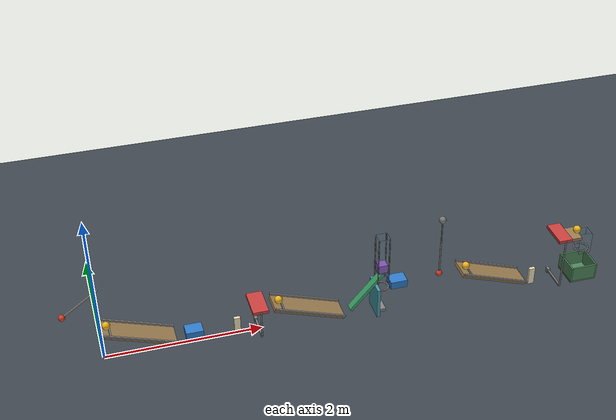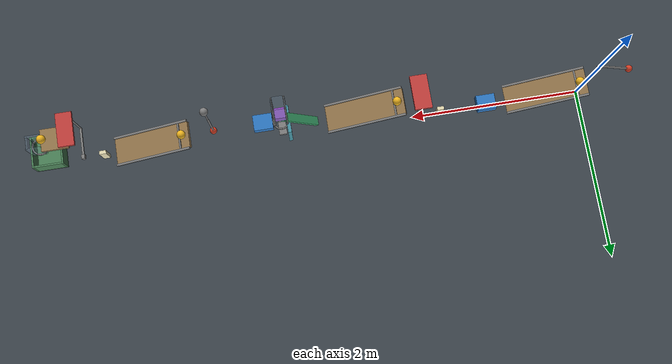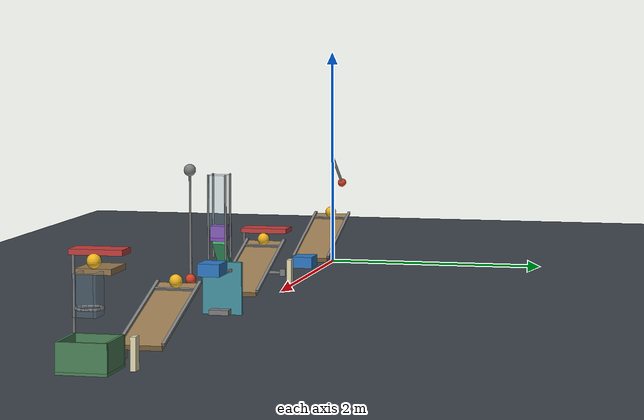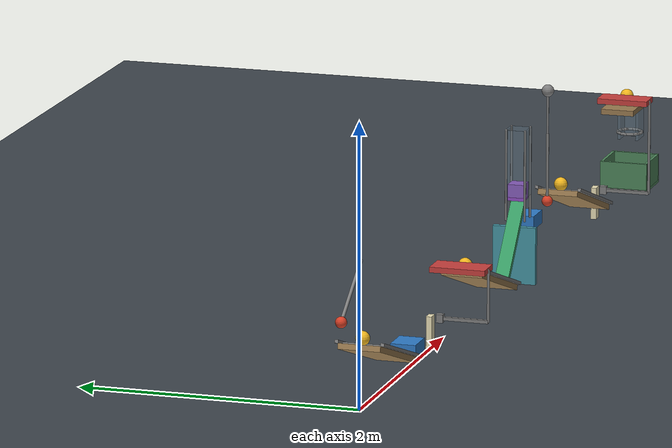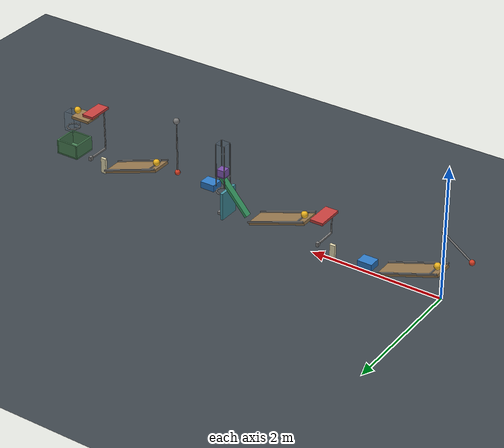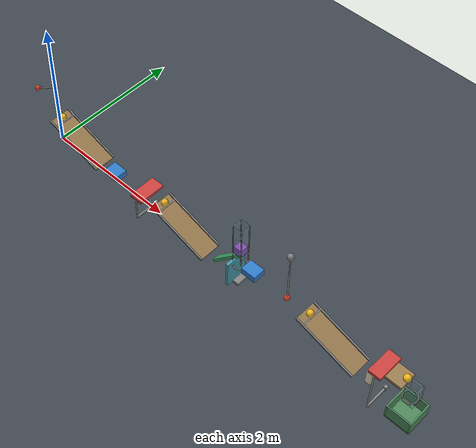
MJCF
<mujoco model="passive_chain_reaction">
  <compiler angle="degree" autolimits="true" inertiafromgeom="true"/>
  <option timestep="0.002" gravity="0 0 -9.81" integrator="implicitfast" solver="Newton" iterations="100" cone="elliptic"/>
  <size njmax="4000" nconmax="1000"/>

  <worldbody>
    <light name="main_light" pos="3 -3 7" dir="0 0 -1" directional="true"/>
    <camera name="overview" pos="3.2 -7.5 4" xyaxes="1 0 0 0 0.38 0.925"/>
    <geom name="floor" type="plane" pos="0 0 0" size="12 5 0.1" friction="0.68 0.005 0.0001" solref="0.008 0.6901" rgba="0.24 0.27 0.30 1"/>

    <body name="pendulum1" pos="0.040896 0 1.034316" euler="0 55 0">
      <joint name="pendulum1_hinge" type="hinge" axis="0 -1 0" range="0 110" damping="0.04" solreflimit="0.004 1"/>
      <geom name="pendulum1_rod" type="capsule" fromto="0 0 0 0 0 -0.50" size="0.012" mass="0.06" friction="0.68 0.005 0.0001" solref="0.008 0.6901"/>
      <geom name="pendulum1_bob" type="sphere" pos="0 0 -0.55" size="0.04" mass="0.34" friction="0.68 0.005 0.0001" solref="0.008 0.6901" rgba="0.85 0.25 0.15 1"/>
    </body>

    <body name="ramp1" pos="0.442610 0 0.285735" euler="0 19 0">
      <geom name="ramp1_surface" type="box" size="0.475 0.15 0.02" friction="0.68 0.005 0.0001" solref="0.008 0.6901" rgba="0.60 0.48 0.31 1"/>
      <geom name="ramp1_left_rail" type="box" pos="0 0.162 0.031" size="0.475 0.012 0.011" friction="0.68 0.005 0.0001" solref="0.008 0.6901"/>
      <geom name="ramp1_right_rail" type="box" pos="0 -0.162 0.031" size="0.475 0.012 0.011" friction="0.68 0.005 0.0001" solref="0.008 0.6901"/>
      <geom name="ramp1_retainer" type="box" pos="-0.36 0 0.028" size="0.01 0.15 0.008" friction="0.68 0.005 0.0001" solref="0.008 0.6901"/>
    </body>

    <body name="ball1" pos="0.080896 0 0.484316">
      <freejoint name="ball1_free"/>
      <geom name="ball1_sphere" type="sphere" size="0.05" mass="0.20" friction="0.68 0.005 0.0001" solref="0.008 0.6901" rgba="0.95 0.72 0.12 1"/>
    </body>

    <body name="cart1" pos="1.128243 0 0.15">
      <joint name="cart1_slide" type="slide" axis="1 0 0" range="0 0.48" damping="0.20" solreflimit="0.004 1"/>
      <geom name="cart1_chassis" type="box" size="0.11 0.09 0.05" mass="0.50" friction="0.68 0.005 0.0001" solref="0.008 0.6901" rgba="0.18 0.48 0.78 1"/>
    </body>

    <body name="domino1" pos="1.678243 0 0.12">
      <freejoint name="domino1_free"/>
      <geom name="domino1_tile" type="box" size="0.04 0.02 0.12" mass="0.25" friction="0.68 0.005 0.0001" solref="0.008 0.6901" rgba="0.92 0.88 0.72 1"/>
    </body>

    <!-- Raised flap panels are connected to low domino trigger arms.
         Their hinge axes are tilted 10 degrees from vertical. -->
    <body name="flap1" pos="1.918243 -0.35 0.53">
      <joint name="flap1_hinge" type="hinge" axis="0 0.173648 -0.984808" range="0 65" damping="0.04" solreflimit="0.004 1"/>
      <geom name="flap1_panel" type="box" pos="0 0.20 0" size="0.10 0.20 0.02" mass="0.27" friction="0.68 0.005 0.0001" solref="0.008 0.6901" rgba="0.78 0.25 0.24 1"/>
      <geom name="flap1_trigger_arm" type="box" pos="0 0.175 -0.37" size="0.012 0.175 0.012" mass="0.015" friction="0.68 0.005 0.0001" solref="0.008 0.6901"/>
      <geom name="flap1_spindle" type="capsule" fromto="0 0 -0.37 0 0 0" size="0.01" mass="0.015" friction="0.68 0.005 0.0001" solref="0.008 0.6901"/>
      <geom name="flap1_trigger_paddle" type="box" pos="0 0.35 -0.37" size="0.02 0.025 0.03" density="0" friction="0.68 0.005 0.0001" solref="0.008 0.6901"/>
    </body>

    <body name="ramp2" pos="2.559957 -0.10 0.285735" euler="0 19 0">
      <geom name="ramp2_surface" type="box" size="0.475 0.15 0.02" friction="0.68 0.005 0.0001" solref="0.008 0.6901" rgba="0.60 0.48 0.31 1"/>
      <geom name="ramp2_left_rail" type="box" pos="0 0.162 0.031" size="0.475 0.012 0.011" friction="0.68 0.005 0.0001" solref="0.008 0.6901"/>
      <geom name="ramp2_right_rail" type="box" pos="0 -0.162 0.031" size="0.475 0.012 0.011" friction="0.68 0.005 0.0001" solref="0.008 0.6901"/>
      <geom name="ramp2_retainer" type="box" pos="-0.36 0 0.028" size="0.01 0.15 0.008" friction="0.68 0.005 0.0001" solref="0.008 0.6901"/>
    </body>

    <body name="ball2" pos="2.198243 -0.10 0.484316">
      <freejoint name="ball2_free"/>
      <geom name="ball2_sphere" type="sphere" size="0.05" mass="0.20" friction="0.68 0.005 0.0001" solref="0.008 0.6901" rgba="0.95 0.72 0.12 1"/>
    </body>

    <!-- Block loading opposes the preloaded seesaw spring at its lower stop. -->
    <body name="seesaw1" pos="3.343903 -0.10 0.381598" euler="0 -49 0">
      <joint name="seesaw1_hinge" type="hinge" axis="0 -1 0" range="0 40" damping="0.04" stiffness="0.50" springref="40" solreflimit="0.004 1"/>
      <geom name="seesaw1_beam" type="box" size="0.325 0.05 0.02" mass="0.55" friction="0.68 0.005 0.0001" solref="0.008 0.6901" rgba="0.22 0.62 0.40 1"/>
    </body>

    <body name="block1" pos="3.542028 -0.10 0.70">
      <freejoint name="block1_free"/>
      <geom name="block1_cube" type="box" size="0.06 0.06 0.06" mass="0.35" friction="0.68 0.005 0.0001" solref="0.008 0.6901" rgba="0.56 0.30 0.76 1"/>
    </body>

    <body name="block1_guide" pos="3.542028 -0.10 0">
      <geom name="block1_guide_left" type="box" pos="-0.074 0 0.915" size="0.006 0.061 0.245" friction="0.68 0.005 0.0001" solref="0.008 0.6901" rgba="0.5 0.65 0.75 0.25"/>
      <geom name="block1_guide_right" type="box" pos="0.074 0 0.915" size="0.006 0.061 0.245" friction="0.68 0.005 0.0001" solref="0.008 0.6901" rgba="0.5 0.65 0.75 0.25"/>
      <geom name="block1_guide_front" type="box" pos="0 -0.074 0.915" size="0.061 0.006 0.245" friction="0.68 0.005 0.0001" solref="0.008 0.6901" rgba="0.5 0.65 0.75 0.25"/>
      <geom name="block1_guide_back" type="box" pos="0 0.074 0.915" size="0.061 0.006 0.245" friction="0.68 0.005 0.0001" solref="0.008 0.6901" rgba="0.5 0.65 0.75 0.25"/>
      <geom name="block1_guide_post1" type="capsule" fromto="-0.07 -0.07 0.50 -0.07 -0.07 1.16" size="0.008" friction="0.68 0.005 0.0001" solref="0.008 0.6901"/>
      <geom name="block1_guide_post2" type="capsule" fromto="-0.07 0.07 0.50 -0.07 0.07 1.16" size="0.008" friction="0.68 0.005 0.0001" solref="0.008 0.6901"/>
      <geom name="block1_guide_post3" type="capsule" fromto="0.07 -0.07 0.50 0.07 -0.07 1.16" size="0.008" friction="0.68 0.005 0.0001" solref="0.008 0.6901"/>
      <geom name="block1_guide_post4" type="capsule" fromto="0.07 0.07 0.50 0.07 0.07 1.16" size="0.008" friction="0.68 0.005 0.0001" solref="0.008 0.6901"/>
    </body>

    <!-- Capsule polygons have a minimum clear diameter of 0.16 m. -->
    <body name="ring1" pos="3.542028 -0.10 0.40">
      <geom name="ring1_s01" type="capsule" fromto="0.093175 0 0 0.080693 0.046587 0" size="0.01" priority="1" friction="0.68 0.005 0.0001" solref="0.08 0.6901" solimp="0.7 0.9 0.02"/>
      <geom name="ring1_s02" type="capsule" fromto="0.080693 0.046587 0 0.046587 0.080693 0" size="0.01" priority="1" friction="0.68 0.005 0.0001" solref="0.08 0.6901" solimp="0.7 0.9 0.02"/>
      <geom name="ring1_s03" type="capsule" fromto="0.046587 0.080693 0 0 0.093175 0" size="0.01" priority="1" friction="0.68 0.005 0.0001" solref="0.08 0.6901" solimp="0.7 0.9 0.02"/>
      <geom name="ring1_s04" type="capsule" fromto="0 0.093175 0 -0.046587 0.080693 0" size="0.01" priority="1" friction="0.68 0.005 0.0001" solref="0.08 0.6901" solimp="0.7 0.9 0.02"/>
      <geom name="ring1_s05" type="capsule" fromto="-0.046587 0.080693 0 -0.080693 0.046587 0" size="0.01" priority="1" friction="0.68 0.005 0.0001" solref="0.08 0.6901" solimp="0.7 0.9 0.02"/>
      <geom name="ring1_s06" type="capsule" fromto="-0.080693 0.046587 0 -0.093175 0 0" size="0.01" priority="1" friction="0.68 0.005 0.0001" solref="0.08 0.6901" solimp="0.7 0.9 0.02"/>
      <geom name="ring1_s07" type="capsule" fromto="-0.093175 0 0 -0.080693 -0.046587 0" size="0.01" priority="1" friction="0.68 0.005 0.0001" solref="0.08 0.6901" solimp="0.7 0.9 0.02"/>
      <geom name="ring1_s08" type="capsule" fromto="-0.080693 -0.046587 0 -0.046587 -0.080693 0" size="0.01" priority="1" friction="0.68 0.005 0.0001" solref="0.08 0.6901" solimp="0.7 0.9 0.02"/>
      <geom name="ring1_s09" type="capsule" fromto="-0.046587 -0.080693 0 0 -0.093175 0" size="0.01" priority="1" friction="0.68 0.005 0.0001" solref="0.08 0.6901" solimp="0.7 0.9 0.02"/>
      <geom name="ring1_s10" type="capsule" fromto="0 -0.093175 0 0.046587 -0.080693 0" size="0.01" priority="1" friction="0.68 0.005 0.0001" solref="0.08 0.6901" solimp="0.7 0.9 0.02"/>
      <geom name="ring1_s11" type="capsule" fromto="0.046587 -0.080693 0 0.080693 -0.046587 0" size="0.01" priority="1" friction="0.68 0.005 0.0001" solref="0.08 0.6901" solimp="0.7 0.9 0.02"/>
      <geom name="ring1_s12" type="capsule" fromto="0.080693 -0.046587 0 0.093175 0 0" size="0.01" priority="1" friction="0.68 0.005 0.0001" solref="0.08 0.6901" solimp="0.7 0.9 0.02"/>
    </body>

    <body name="door1" pos="3.461028 -0.10 0.04">
      <joint name="door1_hinge" type="hinge" axis="0 1 0" range="0 70" damping="0.04" solreflimit="0.004 1"/>
      <geom name="door1_panel" type="box" pos="0 0 0.21" size="0.02 0.16 0.21" mass="0.45" friction="0.68 0.005 0.0001" solref="0.008 0.6901" rgba="0.27 0.59 0.65 1"/>
      <geom name="door1_trigger_foot" type="box" pos="0.081 0 0.03" size="0.045 0.08 0.02" density="0" friction="0.68 0.005 0.0001" solref="0.008 0.6901"/>
    </body>

    <body name="cart2" pos="3.751028 -0.10 0.444005">
      <joint name="cart2_slide" type="slide" axis="1 0 0" range="0 0.49" damping="0.20" solreflimit="0.004 1"/>
      <geom name="cart2_chassis" type="box" size="0.11 0.09 0.05" mass="0.50" friction="0.68 0.005 0.0001" solref="0.008 0.6901" rgba="0.18 0.48 0.78 1"/>
    </body>

    <!-- Hinge-to-bob length is 0.50 m; total assembly mass is 0.35 kg. -->
    <body name="pendulum2" pos="4.321028 -0.10 0.944005">
      <joint name="pendulum2_hinge" type="hinge" axis="0 -1 0" range="0 38" damping="0.04" solreflimit="0.004 1"/>
      <geom name="pendulum2_rod" type="capsule" fromto="0 0 0 0 0 -0.50" size="0.01" mass="0.02" friction="0.68 0.005 0.0001" solref="0.008 0.6901"/>
      <geom name="pendulum2_bob" type="sphere" pos="0 0 -0.50" size="0.04" mass="0.13" friction="0.68 0.005 0.0001" solref="0.008 0.6901" rgba="0.85 0.25 0.15 1"/>
      <geom name="pendulum2_counterweight_stem" type="capsule" fromto="0 0 0 0 0 0.325" size="0.008" density="0" friction="0.68 0.005 0.0001" solref="0.008 0.6901"/>
      <geom name="pendulum2_counterweight" type="sphere" pos="0 0 0.325" size="0.045" mass="0.20" friction="0.68 0.005 0.0001" solref="0.008 0.6901"/>
    </body>

    <body name="ramp3" pos="5.050573 -0.10 0.285735" euler="0 19 0">
      <geom name="ramp3_surface" type="box" size="0.475 0.15 0.02" friction="0.68 0.005 0.0001" solref="0.008 0.6901" rgba="0.60 0.48 0.31 1"/>
      <geom name="ramp3_left_rail" type="box" pos="0 0.162 0.031" size="0.475 0.012 0.011" friction="0.68 0.005 0.0001" solref="0.008 0.6901"/>
      <geom name="ramp3_right_rail" type="box" pos="0 -0.162 0.031" size="0.475 0.012 0.011" friction="0.68 0.005 0.0001" solref="0.008 0.6901"/>
      <geom name="ramp3_retainer" type="box" pos="-0.36 0 0.028" size="0.01 0.15 0.008" friction="0.68 0.005 0.0001" solref="0.008 0.6901"/>
    </body>

    <body name="ball3" pos="4.688859 -0.10 0.484316">
      <freejoint name="ball3_free"/>
      <geom name="ball3_sphere" type="sphere" size="0.05" mass="0.20" friction="0.68 0.005 0.0001" solref="0.008 0.6901" rgba="0.95 0.72 0.12 1"/>
    </body>

    <body name="domino2" pos="5.646206 -0.10 0.12">
      <freejoint name="domino2_free"/>
      <geom name="domino2_tile" type="box" size="0.04 0.02 0.12" mass="0.25" friction="0.68 0.005 0.0001" solref="0.008 0.6901" rgba="0.92 0.88 0.72 1"/>
    </body>

    <body name="flap2" pos="5.886206 -0.45 0.86">
      <joint name="flap2_hinge" type="hinge" axis="0 0.173648 -0.984808" range="0 60" damping="0.04" solreflimit="0.004 1"/>
      <geom name="flap2_panel" type="box" pos="0 0.19 0" size="0.09 0.19 0.02" mass="0.255" friction="0.68 0.005 0.0001" solref="0.008 0.6901" rgba="0.78 0.25 0.24 1"/>
      <geom name="flap2_trigger_arm" type="box" pos="0 0.175 -0.70" size="0.012 0.175 0.012" mass="0.012" friction="0.68 0.005 0.0001" solref="0.008 0.6901"/>
      <geom name="flap2_spindle" type="capsule" fromto="0 0 -0.70 0 0 0" size="0.01" mass="0.013" friction="0.68 0.005 0.0001" solref="0.008 0.6901"/>
      <geom name="flap2_trigger_paddle" type="box" pos="0 0.35 -0.70" size="0.02 0.025 0.03" density="0" friction="0.68 0.005 0.0001" solref="0.008 0.6901"/>
    </body>

    <body name="shelf1" pos="6.036206 -0.20 0.76">
      <geom name="shelf1_surface" type="box" size="0.15 0.125 0.02" friction="0.68 0.005 0.0001" solref="0.008 0.6901" rgba="0.60 0.48 0.31 1"/>
    </body>

    <body name="ball4" pos="6.166206 -0.20 0.83">
      <freejoint name="ball4_free"/>
      <geom name="ball4_sphere" type="sphere" size="0.05" mass="0.20" friction="0.68 0.005 0.0001" solref="0.008 0.6901" rgba="0.95 0.72 0.12 1"/>
    </body>

    <!-- Guide tops lie below the flap's swept panel. -->
    <body name="ball4_dropguide" pos="6.261206 -0.20 0">
      <geom name="ball4_dropguide_back" type="box" pos="0.085 0 0.625" size="0.01 0.075 0.145" friction="0.68 0.005 0.0001" solref="0.008 0.6901" rgba="0.5 0.65 0.75 0.25"/>
      <geom name="ball4_dropguide_left" type="box" pos="0.02 0.07 0.625" size="0.08 0.01 0.145" friction="0.68 0.005 0.0001" solref="0.008 0.6901" rgba="0.5 0.65 0.75 0.25"/>
      <geom name="ball4_dropguide_right" type="box" pos="0.02 -0.07 0.625" size="0.08 0.01 0.145" friction="0.68 0.005 0.0001" solref="0.008 0.6901" rgba="0.5 0.65 0.75 0.25"/>
    </body>

    <body name="ring2" pos="6.261206 -0.20 0.53">
      <geom name="ring2_s01" type="capsule" fromto="0.093175 0 0 0.080693 0.046587 0" size="0.01" friction="0.68 0.005 0.0001" solref="0.008 0.6901"/>
      <geom name="ring2_s02" type="capsule" fromto="0.080693 0.046587 0 0.046587 0.080693 0" size="0.01" friction="0.68 0.005 0.0001" solref="0.008 0.6901"/>
      <geom name="ring2_s03" type="capsule" fromto="0.046587 0.080693 0 0 0.093175 0" size="0.01" friction="0.68 0.005 0.0001" solref="0.008 0.6901"/>
      <geom name="ring2_s04" type="capsule" fromto="0 0.093175 0 -0.046587 0.080693 0" size="0.01" friction="0.68 0.005 0.0001" solref="0.008 0.6901"/>
      <geom name="ring2_s05" type="capsule" fromto="-0.046587 0.080693 0 -0.080693 0.046587 0" size="0.01" friction="0.68 0.005 0.0001" solref="0.008 0.6901"/>
      <geom name="ring2_s06" type="capsule" fromto="-0.080693 0.046587 0 -0.093175 0 0" size="0.01" friction="0.68 0.005 0.0001" solref="0.008 0.6901"/>
      <geom name="ring2_s07" type="capsule" fromto="-0.093175 0 0 -0.080693 -0.046587 0" size="0.01" friction="0.68 0.005 0.0001" solref="0.008 0.6901"/>
      <geom name="ring2_s08" type="capsule" fromto="-0.080693 -0.046587 0 -0.046587 -0.080693 0" size="0.01" friction="0.68 0.005 0.0001" solref="0.008 0.6901"/>
      <geom name="ring2_s09" type="capsule" fromto="-0.046587 -0.080693 0 0 -0.093175 0" size="0.01" friction="0.68 0.005 0.0001" solref="0.008 0.6901"/>
      <geom name="ring2_s10" type="capsule" fromto="0 -0.093175 0 0.046587 -0.080693 0" size="0.01" friction="0.68 0.005 0.0001" solref="0.008 0.6901"/>
      <geom name="ring2_s11" type="capsule" fromto="0.046587 -0.080693 0 0.080693 -0.046587 0" size="0.01" friction="0.68 0.005 0.0001" solref="0.008 0.6901"/>
      <geom name="ring2_s12" type="capsule" fromto="0.080693 -0.046587 0 0.093175 0 0" size="0.01" friction="0.68 0.005 0.0001" solref="0.008 0.6901"/>
    </body>

    <!-- Bottom top is z=0.13, so the resting ball center is z=0.18:
         0.35 m below ring2's center. Inner footprint is 0.32 by 0.32 m. -->
    <body name="box1" pos="6.261206 -0.20 0">
      <geom name="box1_bottom" type="box" pos="0 0 0.12" size="0.18 0.18 0.01" friction="0.68 0.005 0.0001" solref="0.008 0.6901" rgba="0.30 0.52 0.35 1"/>
      <geom name="box1_wall_left" type="box" pos="-0.17 0 0.23" size="0.01 0.18 0.10" friction="0.68 0.005 0.0001" solref="0.008 0.6901" rgba="0.30 0.52 0.35 1"/>
      <geom name="box1_wall_right" type="box" pos="0.17 0 0.23" size="0.01 0.18 0.10" friction="0.68 0.005 0.0001" solref="0.008 0.6901" rgba="0.30 0.52 0.35 1"/>
      <geom name="box1_wall_front" type="box" pos="0 -0.17 0.23" size="0.16 0.01 0.10" friction="0.68 0.005 0.0001" solref="0.008 0.6901" rgba="0.30 0.52 0.35 1"/>
      <geom name="box1_wall_back" type="box" pos="0 0.17 0.23" size="0.16 0.01 0.10" friction="0.68 0.005 0.0001" solref="0.008 0.6901" rgba="0.30 0.52 0.35 1"/>
    </body>
  </worldbody>

  <!-- Omitted qpos uses the model's initial configuration; omitted qvel
       is zero for every degree of freedom. There are no actuators. -->
  <keyframe>
    <key name="start" time="0"/>
  </keyframe>
</mujoco>
